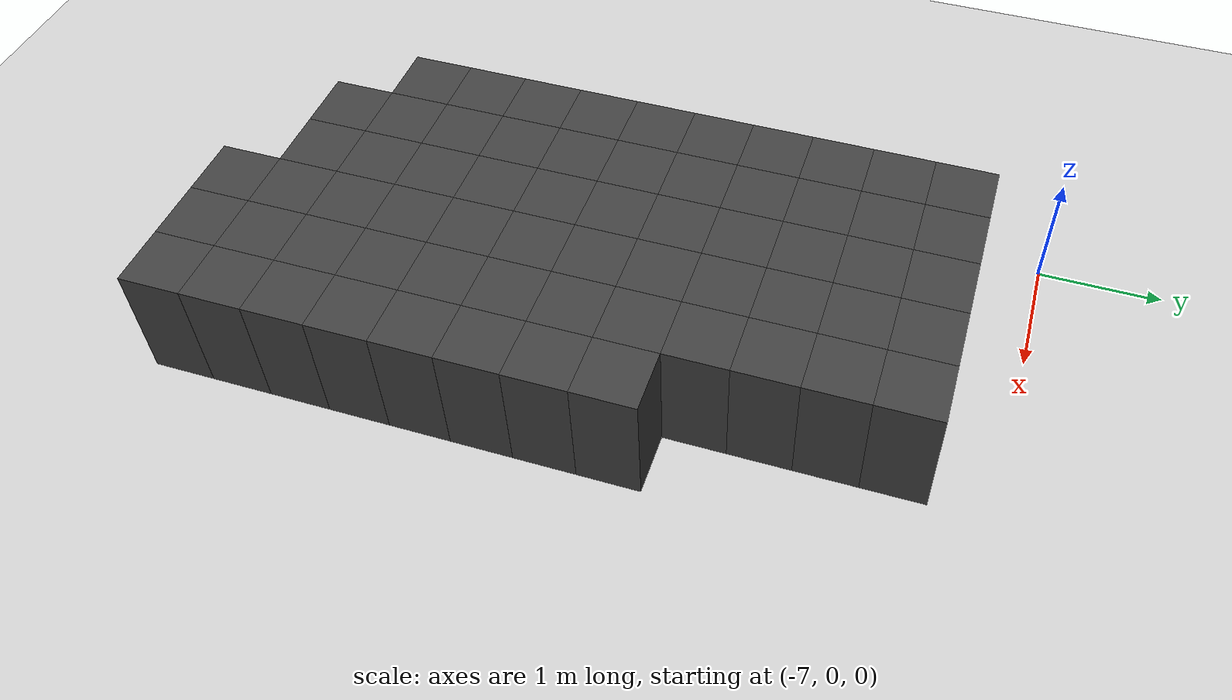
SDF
<sdf version="1.7">
 <world name="map_11515">
  <model name="ground_plane">
   <static>true</static>
   <link name="link">
    <collision name="collision">
     <geometry><plane><normal>0 0 1</normal><size>200 200</size></plane></geometry>
    </collision>
    <visual name="visual">
     <geometry><plane><normal>0 0 1</normal><size>200 200</size></plane></geometry>
     <material><ambient>0.8 0.8 0.8 1</ambient><diffuse>0.8 0.8 0.8 1</diffuse></material>
    </visual>
   </link>
  </model>
  <model name="maze_environment">
   <static>true</static>
   <link name="wall_1091">
    <pose>-6.750 -0.750 0.500 0 0 0</pose>
    <collision name="col"><geometry><box><size>0.5 0.5 1.0</size></box></geometry></collision>
    <visual name="vis">
     <geometry><box><size>0.5 0.5 1.0</size></box></geometry>
     <material><ambient>0.15 0.15 0.15 1</ambient><diffuse>0.25 0.25 0.25 1</diffuse></material>
    </visual>
   </link>
   <link name="wall_1092">
    <pose>-6.250 -0.750 0.500 0 0 0</pose>
    <collision name="col"><geometry><box><size>0.5 0.5 1.0</size></box></geometry></collision>
    <visual name="vis">
     <geometry><box><size>0.5 0.5 1.0</size></box></geometry>
     <material><ambient>0.15 0.15 0.15 1</ambient><diffuse>0.25 0.25 0.25 1</diffuse></material>
    </visual>
   </link>
   <link name="wall_1093">
    <pose>-5.750 -0.750 0.500 0 0 0</pose>
    <collision name="col"><geometry><box><size>0.5 0.5 1.0</size></box></geometry></collision>
    <visual name="vis">
     <geometry><box><size>0.5 0.5 1.0</size></box></geometry>
     <material><ambient>0.15 0.15 0.15 1</ambient><diffuse>0.25 0.25 0.25 1</diffuse></material>
    </visual>
   </link>
   <link name="wall_1094">
    <pose>-5.250 -0.750 0.500 0 0 0</pose>
    <collision name="col"><geometry><box><size>0.5 0.5 1.0</size></box></geometry></collision>
    <visual name="vis">
     <geometry><box><size>0.5 0.5 1.0</size></box></geometry>
     <material><ambient>0.15 0.15 0.15 1</ambient><diffuse>0.25 0.25 0.25 1</diffuse></material>
    </visual>
   </link>
   <link name="wall_1095">
    <pose>-4.750 -0.750 0.500 0 0 0</pose>
    <collision name="col"><geometry><box><size>0.5 0.5 1.0</size></box></geometry></collision>
    <visual name="vis">
     <geometry><box><size>0.5 0.5 1.0</size></box></geometry>
     <material><ambient>0.15 0.15 0.15 1</ambient><diffuse>0.25 0.25 0.25 1</diffuse></material>
    </visual>
   </link>
   <link name="wall_1140">
    <pose>-6.750 -1.250 0.500 0 0 0</pose>
    <collision name="col"><geometry><box><size>0.5 0.5 1.0</size></box></geometry></collision>
    <visual name="vis">
     <geometry><box><size>0.5 0.5 1.0</size></box></geometry>
     <material><ambient>0.15 0.15 0.15 1</ambient><diffuse>0.25 0.25 0.25 1</diffuse></material>
    </visual>
   </link>
   <link name="wall_1141">
    <pose>-6.250 -1.250 0.500 0 0 0</pose>
    <collision name="col"><geometry><box><size>0.5 0.5 1.0</size></box></geometry></collision>
    <visual name="vis">
     <geometry><box><size>0.5 0.5 1.0</size></box></geometry>
     <material><ambient>0.15 0.15 0.15 1</ambient><diffuse>0.25 0.25 0.25 1</diffuse></material>
    </visual>
   </link>
   <link name="wall_1142">
    <pose>-5.750 -1.250 0.500 0 0 0</pose>
    <collision name="col"><geometry><box><size>0.5 0.5 1.0</size></box></geometry></collision>
    <visual name="vis">
     <geometry><box><size>0.5 0.5 1.0</size></box></geometry>
     <material><ambient>0.15 0.15 0.15 1</ambient><diffuse>0.25 0.25 0.25 1</diffuse></material>
    </visual>
   </link>
   <link name="wall_1143">
    <pose>-5.250 -1.250 0.500 0 0 0</pose>
    <collision name="col"><geometry><box><size>0.5 0.5 1.0</size></box></geometry></collision>
    <visual name="vis">
     <geometry><box><size>0.5 0.5 1.0</size></box></geometry>
     <material><ambient>0.15 0.15 0.15 1</ambient><diffuse>0.25 0.25 0.25 1</diffuse></material>
    </visual>
   </link>
   <link name="wall_1144">
    <pose>-4.750 -1.250 0.500 0 0 0</pose>
    <collision name="col"><geometry><box><size>0.5 0.5 1.0</size></box></geometry></collision>
    <visual name="vis">
     <geometry><box><size>0.5 0.5 1.0</size></box></geometry>
     <material><ambient>0.15 0.15 0.15 1</ambient><diffuse>0.25 0.25 0.25 1</diffuse></material>
    </visual>
   </link>
   <link name="wall_1189">
    <pose>-6.750 -1.750 0.500 0 0 0</pose>
    <collision name="col"><geometry><box><size>0.5 0.5 1.0</size></box></geometry></collision>
    <visual name="vis">
     <geometry><box><size>0.5 0.5 1.0</size></box></geometry>
     <material><ambient>0.15 0.15 0.15 1</ambient><diffuse>0.25 0.25 0.25 1</diffuse></material>
    </visual>
   </link>
   <link name="wall_1190">
    <pose>-6.250 -1.750 0.500 0 0 0</pose>
    <collision name="col"><geometry><box><size>0.5 0.5 1.0</size></box></geometry></collision>
    <visual name="vis">
     <geometry><box><size>0.5 0.5 1.0</size></box></geometry>
     <material><ambient>0.15 0.15 0.15 1</ambient><diffuse>0.25 0.25 0.25 1</diffuse></material>
    </visual>
   </link>
   <link name="wall_1191">
    <pose>-5.750 -1.750 0.500 0 0 0</pose>
    <collision name="col"><geometry><box><size>0.5 0.5 1.0</size></box></geometry></collision>
    <visual name="vis">
     <geometry><box><size>0.5 0.5 1.0</size></box></geometry>
     <material><ambient>0.15 0.15 0.15 1</ambient><diffuse>0.25 0.25 0.25 1</diffuse></material>
    </visual>
   </link>
   <link name="wall_1192">
    <pose>-5.250 -1.750 0.500 0 0 0</pose>
    <collision name="col"><geometry><box><size>0.5 0.5 1.0</size></box></geometry></collision>
    <visual name="vis">
     <geometry><box><size>0.5 0.5 1.0</size></box></geometry>
     <material><ambient>0.15 0.15 0.15 1</ambient><diffuse>0.25 0.25 0.25 1</diffuse></material>
    </visual>
   </link>
   <link name="wall_1193">
    <pose>-4.750 -1.750 0.500 0 0 0</pose>
    <collision name="col"><geometry><box><size>0.5 0.5 1.0</size></box></geometry></collision>
    <visual name="vis">
     <geometry><box><size>0.5 0.5 1.0</size></box></geometry>
     <material><ambient>0.15 0.15 0.15 1</ambient><diffuse>0.25 0.25 0.25 1</diffuse></material>
    </visual>
   </link>
   <link name="wall_1238">
    <pose>-6.750 -2.250 0.500 0 0 0</pose>
    <collision name="col"><geometry><box><size>0.5 0.5 1.0</size></box></geometry></collision>
    <visual name="vis">
     <geometry><box><size>0.5 0.5 1.0</size></box></geometry>
     <material><ambient>0.15 0.15 0.15 1</ambient><diffuse>0.25 0.25 0.25 1</diffuse></material>
    </visual>
   </link>
   <link name="wall_1239">
    <pose>-6.250 -2.250 0.500 0 0 0</pose>
    <collision name="col"><geometry><box><size>0.5 0.5 1.0</size></box></geometry></collision>
    <visual name="vis">
     <geometry><box><size>0.5 0.5 1.0</size></box></geometry>
     <material><ambient>0.15 0.15 0.15 1</ambient><diffuse>0.25 0.25 0.25 1</diffuse></material>
    </visual>
   </link>
   <link name="wall_1240">
    <pose>-5.750 -2.250 0.500 0 0 0</pose>
    <collision name="col"><geometry><box><size>0.5 0.5 1.0</size></box></geometry></collision>
    <visual name="vis">
     <geometry><box><size>0.5 0.5 1.0</size></box></geometry>
     <material><ambient>0.15 0.15 0.15 1</ambient><diffuse>0.25 0.25 0.25 1</diffuse></material>
    </visual>
   </link>
   <link name="wall_1241">
    <pose>-5.250 -2.250 0.500 0 0 0</pose>
    <collision name="col"><geometry><box><size>0.5 0.5 1.0</size></box></geometry></collision>
    <visual name="vis">
     <geometry><box><size>0.5 0.5 1.0</size></box></geometry>
     <material><ambient>0.15 0.15 0.15 1</ambient><diffuse>0.25 0.25 0.25 1</diffuse></material>
    </visual>
   </link>
   <link name="wall_1242">
    <pose>-4.750 -2.250 0.500 0 0 0</pose>
    <collision name="col"><geometry><box><size>0.5 0.5 1.0</size></box></geometry></collision>
    <visual name="vis">
     <geometry><box><size>0.5 0.5 1.0</size></box></geometry>
     <material><ambient>0.15 0.15 0.15 1</ambient><diffuse>0.25 0.25 0.25 1</diffuse></material>
    </visual>
   </link>
   <link name="wall_1284">
    <pose>-6.750 -2.750 0.500 0 0 0</pose>
    <collision name="col"><geometry><box><size>0.5 0.5 1.0</size></box></geometry></collision>
    <visual name="vis">
     <geometry><box><size>0.5 0.5 1.0</size></box></geometry>
     <material><ambient>0.15 0.15 0.15 1</ambient><diffuse>0.25 0.25 0.25 1</diffuse></material>
    </visual>
   </link>
   <link name="wall_1285">
    <pose>-6.250 -2.750 0.500 0 0 0</pose>
    <collision name="col"><geometry><box><size>0.5 0.5 1.0</size></box></geometry></collision>
    <visual name="vis">
     <geometry><box><size>0.5 0.5 1.0</size></box></geometry>
     <material><ambient>0.15 0.15 0.15 1</ambient><diffuse>0.25 0.25 0.25 1</diffuse></material>
    </visual>
   </link>
   <link name="wall_1286">
    <pose>-5.750 -2.750 0.500 0 0 0</pose>
    <collision name="col"><geometry><box><size>0.5 0.5 1.0</size></box></geometry></collision>
    <visual name="vis">
     <geometry><box><size>0.5 0.5 1.0</size></box></geometry>
     <material><ambient>0.15 0.15 0.15 1</ambient><diffuse>0.25 0.25 0.25 1</diffuse></material>
    </visual>
   </link>
   <link name="wall_1287">
    <pose>-5.250 -2.750 0.500 0 0 0</pose>
    <collision name="col"><geometry><box><size>0.5 0.5 1.0</size></box></geometry></collision>
    <visual name="vis">
     <geometry><box><size>0.5 0.5 1.0</size></box></geometry>
     <material><ambient>0.15 0.15 0.15 1</ambient><diffuse>0.25 0.25 0.25 1</diffuse></material>
    </visual>
   </link>
   <link name="wall_1288">
    <pose>-4.750 -2.750 0.500 0 0 0</pose>
    <collision name="col"><geometry><box><size>0.5 0.5 1.0</size></box></geometry></collision>
    <visual name="vis">
     <geometry><box><size>0.5 0.5 1.0</size></box></geometry>
     <material><ambient>0.15 0.15 0.15 1</ambient><diffuse>0.25 0.25 0.25 1</diffuse></material>
    </visual>
   </link>
   <link name="wall_1289">
    <pose>-4.250 -2.750 0.500 0 0 0</pose>
    <collision name="col"><geometry><box><size>0.5 0.5 1.0</size></box></geometry></collision>
    <visual name="vis">
     <geometry><box><size>0.5 0.5 1.0</size></box></geometry>
     <material><ambient>0.15 0.15 0.15 1</ambient><diffuse>0.25 0.25 0.25 1</diffuse></material>
    </visual>
   </link>
   <link name="wall_1330">
    <pose>-6.750 -3.250 0.500 0 0 0</pose>
    <collision name="col"><geometry><box><size>0.5 0.5 1.0</size></box></geometry></collision>
    <visual name="vis">
     <geometry><box><size>0.5 0.5 1.0</size></box></geometry>
     <material><ambient>0.15 0.15 0.15 1</ambient><diffuse>0.25 0.25 0.25 1</diffuse></material>
    </visual>
   </link>
   <link name="wall_1331">
    <pose>-6.250 -3.250 0.500 0 0 0</pose>
    <collision name="col"><geometry><box><size>0.5 0.5 1.0</size></box></geometry></collision>
    <visual name="vis">
     <geometry><box><size>0.5 0.5 1.0</size></box></geometry>
     <material><ambient>0.15 0.15 0.15 1</ambient><diffuse>0.25 0.25 0.25 1</diffuse></material>
    </visual>
   </link>
   <link name="wall_1332">
    <pose>-5.750 -3.250 0.500 0 0 0</pose>
    <collision name="col"><geometry><box><size>0.5 0.5 1.0</size></box></geometry></collision>
    <visual name="vis">
     <geometry><box><size>0.5 0.5 1.0</size></box></geometry>
     <material><ambient>0.15 0.15 0.15 1</ambient><diffuse>0.25 0.25 0.25 1</diffuse></material>
    </visual>
   </link>
   <link name="wall_1333">
    <pose>-5.250 -3.250 0.500 0 0 0</pose>
    <collision name="col"><geometry><box><size>0.5 0.5 1.0</size></box></geometry></collision>
    <visual name="vis">
     <geometry><box><size>0.5 0.5 1.0</size></box></geometry>
     <material><ambient>0.15 0.15 0.15 1</ambient><diffuse>0.25 0.25 0.25 1</diffuse></material>
    </visual>
   </link>
   <link name="wall_1334">
    <pose>-4.750 -3.250 0.500 0 0 0</pose>
    <collision name="col"><geometry><box><size>0.5 0.5 1.0</size></box></geometry></collision>
    <visual name="vis">
     <geometry><box><size>0.5 0.5 1.0</size></box></geometry>
     <material><ambient>0.15 0.15 0.15 1</ambient><diffuse>0.25 0.25 0.25 1</diffuse></material>
    </visual>
   </link>
   <link name="wall_1335">
    <pose>-4.250 -3.250 0.500 0 0 0</pose>
    <collision name="col"><geometry><box><size>0.5 0.5 1.0</size></box></geometry></collision>
    <visual name="vis">
     <geometry><box><size>0.5 0.5 1.0</size></box></geometry>
     <material><ambient>0.15 0.15 0.15 1</ambient><diffuse>0.25 0.25 0.25 1</diffuse></material>
    </visual>
   </link>
   <link name="wall_1376">
    <pose>-6.750 -3.750 0.500 0 0 0</pose>
    <collision name="col"><geometry><box><size>0.5 0.5 1.0</size></box></geometry></collision>
    <visual name="vis">
     <geometry><box><size>0.5 0.5 1.0</size></box></geometry>
     <material><ambient>0.15 0.15 0.15 1</ambient><diffuse>0.25 0.25 0.25 1</diffuse></material>
    </visual>
   </link>
   <link name="wall_1377">
    <pose>-6.250 -3.750 0.500 0 0 0</pose>
    <collision name="col"><geometry><box><size>0.5 0.5 1.0</size></box></geometry></collision>
    <visual name="vis">
     <geometry><box><size>0.5 0.5 1.0</size></box></geometry>
     <material><ambient>0.15 0.15 0.15 1</ambient><diffuse>0.25 0.25 0.25 1</diffuse></material>
    </visual>
   </link>
   <link name="wall_1378">
    <pose>-5.750 -3.750 0.500 0 0 0</pose>
    <collision name="col"><geometry><box><size>0.5 0.5 1.0</size></box></geometry></collision>
    <visual name="vis">
     <geometry><box><size>0.5 0.5 1.0</size></box></geometry>
     <material><ambient>0.15 0.15 0.15 1</ambient><diffuse>0.25 0.25 0.25 1</diffuse></material>
    </visual>
   </link>
   <link name="wall_1379">
    <pose>-5.250 -3.750 0.500 0 0 0</pose>
    <collision name="col"><geometry><box><size>0.5 0.5 1.0</size></box></geometry></collision>
    <visual name="vis">
     <geometry><box><size>0.5 0.5 1.0</size></box></geometry>
     <material><ambient>0.15 0.15 0.15 1</ambient><diffuse>0.25 0.25 0.25 1</diffuse></material>
    </visual>
   </link>
   <link name="wall_1380">
    <pose>-4.750 -3.750 0.500 0 0 0</pose>
    <collision name="col"><geometry><box><size>0.5 0.5 1.0</size></box></geometry></collision>
    <visual name="vis">
     <geometry><box><size>0.5 0.5 1.0</size></box></geometry>
     <material><ambient>0.15 0.15 0.15 1</ambient><diffuse>0.25 0.25 0.25 1</diffuse></material>
    </visual>
   </link>
   <link name="wall_1381">
    <pose>-4.250 -3.750 0.500 0 0 0</pose>
    <collision name="col"><geometry><box><size>0.5 0.5 1.0</size></box></geometry></collision>
    <visual name="vis">
     <geometry><box><size>0.5 0.5 1.0</size></box></geometry>
     <material><ambient>0.15 0.15 0.15 1</ambient><diffuse>0.25 0.25 0.25 1</diffuse></material>
    </visual>
   </link>
   <link name="wall_1422">
    <pose>-6.750 -4.250 0.500 0 0 0</pose>
    <collision name="col"><geometry><box><size>0.5 0.5 1.0</size></box></geometry></collision>
    <visual name="vis">
     <geometry><box><size>0.5 0.5 1.0</size></box></geometry>
     <material><ambient>0.15 0.15 0.15 1</ambient><diffuse>0.25 0.25 0.25 1</diffuse></material>
    </visual>
   </link>
   <link name="wall_1423">
    <pose>-6.250 -4.250 0.500 0 0 0</pose>
    <collision name="col"><geometry><box><size>0.5 0.5 1.0</size></box></geometry></collision>
    <visual name="vis">
     <geometry><box><size>0.5 0.5 1.0</size></box></geometry>
     <material><ambient>0.15 0.15 0.15 1</ambient><diffuse>0.25 0.25 0.25 1</diffuse></material>
    </visual>
   </link>
   <link name="wall_1424">
    <pose>-5.750 -4.250 0.500 0 0 0</pose>
    <collision name="col"><geometry><box><size>0.5 0.5 1.0</size></box></geometry></collision>
    <visual name="vis">
     <geometry><box><size>0.5 0.5 1.0</size></box></geometry>
     <material><ambient>0.15 0.15 0.15 1</ambient><diffuse>0.25 0.25 0.25 1</diffuse></material>
    </visual>
   </link>
   <link name="wall_1425">
    <pose>-5.250 -4.250 0.500 0 0 0</pose>
    <collision name="col"><geometry><box><size>0.5 0.5 1.0</size></box></geometry></collision>
    <visual name="vis">
     <geometry><box><size>0.5 0.5 1.0</size></box></geometry>
     <material><ambient>0.15 0.15 0.15 1</ambient><diffuse>0.25 0.25 0.25 1</diffuse></material>
    </visual>
   </link>
   <link name="wall_1426">
    <pose>-4.750 -4.250 0.500 0 0 0</pose>
    <collision name="col"><geometry><box><size>0.5 0.5 1.0</size></box></geometry></collision>
    <visual name="vis">
     <geometry><box><size>0.5 0.5 1.0</size></box></geometry>
     <material><ambient>0.15 0.15 0.15 1</ambient><diffuse>0.25 0.25 0.25 1</diffuse></material>
    </visual>
   </link>
   <link name="wall_1427">
    <pose>-4.250 -4.250 0.500 0 0 0</pose>
    <collision name="col"><geometry><box><size>0.5 0.5 1.0</size></box></geometry></collision>
    <visual name="vis">
     <geometry><box><size>0.5 0.5 1.0</size></box></geometry>
     <material><ambient>0.15 0.15 0.15 1</ambient><diffuse>0.25 0.25 0.25 1</diffuse></material>
    </visual>
   </link>
   <link name="wall_1468">
    <pose>-6.750 -4.750 0.500 0 0 0</pose>
    <collision name="col"><geometry><box><size>0.5 0.5 1.0</size></box></geometry></collision>
    <visual name="vis">
     <geometry><box><size>0.5 0.5 1.0</size></box></geometry>
     <material><ambient>0.15 0.15 0.15 1</ambient><diffuse>0.25 0.25 0.25 1</diffuse></material>
    </visual>
   </link>
   <link name="wall_1469">
    <pose>-6.250 -4.750 0.500 0 0 0</pose>
    <collision name="col"><geometry><box><size>0.5 0.5 1.0</size></box></geometry></collision>
    <visual name="vis">
     <geometry><box><size>0.5 0.5 1.0</size></box></geometry>
     <material><ambient>0.15 0.15 0.15 1</ambient><diffuse>0.25 0.25 0.25 1</diffuse></material>
    </visual>
   </link>
   <link name="wall_1470">
    <pose>-5.750 -4.750 0.500 0 0 0</pose>
    <collision name="col"><geometry><box><size>0.5 0.5 1.0</size></box></geometry></collision>
    <visual name="vis">
     <geometry><box><size>0.5 0.5 1.0</size></box></geometry>
     <material><ambient>0.15 0.15 0.15 1</ambient><diffuse>0.25 0.25 0.25 1</diffuse></material>
    </visual>
   </link>
   <link name="wall_1471">
    <pose>-5.250 -4.750 0.500 0 0 0</pose>
    <collision name="col"><geometry><box><size>0.5 0.5 1.0</size></box></geometry></collision>
    <visual name="vis">
     <geometry><box><size>0.5 0.5 1.0</size></box></geometry>
     <material><ambient>0.15 0.15 0.15 1</ambient><diffuse>0.25 0.25 0.25 1</diffuse></material>
    </visual>
   </link>
   <link name="wall_1472">
    <pose>-4.750 -4.750 0.500 0 0 0</pose>
    <collision name="col"><geometry><box><size>0.5 0.5 1.0</size></box></geometry></collision>
    <visual name="vis">
     <geometry><box><size>0.5 0.5 1.0</size></box></geometry>
     <material><ambient>0.15 0.15 0.15 1</ambient><diffuse>0.25 0.25 0.25 1</diffuse></material>
    </visual>
   </link>
   <link name="wall_1473">
    <pose>-4.250 -4.750 0.500 0 0 0</pose>
    <collision name="col"><geometry><box><size>0.5 0.5 1.0</size></box></geometry></collision>
    <visual name="vis">
     <geometry><box><size>0.5 0.5 1.0</size></box></geometry>
     <material><ambient>0.15 0.15 0.15 1</ambient><diffuse>0.25 0.25 0.25 1</diffuse></material>
    </visual>
   </link>
   <link name="wall_1514">
    <pose>-6.750 -5.250 0.500 0 0 0</pose>
    <collision name="col"><geometry><box><size>0.5 0.5 1.0</size></box></geometry></collision>
    <visual name="vis">
     <geometry><box><size>0.5 0.5 1.0</size></box></geometry>
     <material><ambient>0.15 0.15 0.15 1</ambient><diffuse>0.25 0.25 0.25 1</diffuse></material>
    </visual>
   </link>
   <link name="wall_1515">
    <pose>-6.250 -5.250 0.500 0 0 0</pose>
    <collision name="col"><geometry><box><size>0.5 0.5 1.0</size></box></geometry></collision>
    <visual name="vis">
     <geometry><box><size>0.5 0.5 1.0</size></box></geometry>
     <material><ambient>0.15 0.15 0.15 1</ambient><diffuse>0.25 0.25 0.25 1</diffuse></material>
    </visual>
   </link>
   <link name="wall_1516">
    <pose>-5.750 -5.250 0.500 0 0 0</pose>
    <collision name="col"><geometry><box><size>0.5 0.5 1.0</size></box></geometry></collision>
    <visual name="vis">
     <geometry><box><size>0.5 0.5 1.0</size></box></geometry>
     <material><ambient>0.15 0.15 0.15 1</ambient><diffuse>0.25 0.25 0.25 1</diffuse></material>
    </visual>
   </link>
   <link name="wall_1517">
    <pose>-5.250 -5.250 0.500 0 0 0</pose>
    <collision name="col"><geometry><box><size>0.5 0.5 1.0</size></box></geometry></collision>
    <visual name="vis">
     <geometry><box><size>0.5 0.5 1.0</size></box></geometry>
     <material><ambient>0.15 0.15 0.15 1</ambient><diffuse>0.25 0.25 0.25 1</diffuse></material>
    </visual>
   </link>
   <link name="wall_1518">
    <pose>-4.750 -5.250 0.500 0 0 0</pose>
    <collision name="col"><geometry><box><size>0.5 0.5 1.0</size></box></geometry></collision>
    <visual name="vis">
     <geometry><box><size>0.5 0.5 1.0</size></box></geometry>
     <material><ambient>0.15 0.15 0.15 1</ambient><diffuse>0.25 0.25 0.25 1</diffuse></material>
    </visual>
   </link>
   <link name="wall_1519">
    <pose>-4.250 -5.250 0.500 0 0 0</pose>
    <collision name="col"><geometry><box><size>0.5 0.5 1.0</size></box></geometry></collision>
    <visual name="vis">
     <geometry><box><size>0.5 0.5 1.0</size></box></geometry>
     <material><ambient>0.15 0.15 0.15 1</ambient><diffuse>0.25 0.25 0.25 1</diffuse></material>
    </visual>
   </link>
   <link name="wall_1564">
    <pose>-6.250 -5.750 0.500 0 0 0</pose>
    <collision name="col"><geometry><box><size>0.5 0.5 1.0</size></box></geometry></collision>
    <visual name="vis">
     <geometry><box><size>0.5 0.5 1.0</size></box></geometry>
     <material><ambient>0.15 0.15 0.15 1</ambient><diffuse>0.25 0.25 0.25 1</diffuse></material>
    </visual>
   </link>
   <link name="wall_1565">
    <pose>-5.750 -5.750 0.500 0 0 0</pose>
    <collision name="col"><geometry><box><size>0.5 0.5 1.0</size></box></geometry></collision>
    <visual name="vis">
     <geometry><box><size>0.5 0.5 1.0</size></box></geometry>
     <material><ambient>0.15 0.15 0.15 1</ambient><diffuse>0.25 0.25 0.25 1</diffuse></material>
    </visual>
   </link>
   <link name="wall_1566">
    <pose>-5.250 -5.750 0.500 0 0 0</pose>
    <collision name="col"><geometry><box><size>0.5 0.5 1.0</size></box></geometry></collision>
    <visual name="vis">
     <geometry><box><size>0.5 0.5 1.0</size></box></geometry>
     <material><ambient>0.15 0.15 0.15 1</ambient><diffuse>0.25 0.25 0.25 1</diffuse></material>
    </visual>
   </link>
   <link name="wall_1567">
    <pose>-4.750 -5.750 0.500 0 0 0</pose>
    <collision name="col"><geometry><box><size>0.5 0.5 1.0</size></box></geometry></collision>
    <visual name="vis">
     <geometry><box><size>0.5 0.5 1.0</size></box></geometry>
     <material><ambient>0.15 0.15 0.15 1</ambient><diffuse>0.25 0.25 0.25 1</diffuse></material>
    </visual>
   </link>
   <link name="wall_1568">
    <pose>-4.250 -5.750 0.500 0 0 0</pose>
    <collision name="col"><geometry><box><size>0.5 0.5 1.0</size></box></geometry></collision>
    <visual name="vis">
     <geometry><box><size>0.5 0.5 1.0</size></box></geometry>
     <material><ambient>0.15 0.15 0.15 1</ambient><diffuse>0.25 0.25 0.25 1</diffuse></material>
    </visual>
   </link>
   <link name="wall_1615">
    <pose>-5.250 -6.250 0.500 0 0 0</pose>
    <collision name="col"><geometry><box><size>0.5 0.5 1.0</size></box></geometry></collision>
    <visual name="vis">
     <geometry><box><size>0.5 0.5 1.0</size></box></geometry>
     <material><ambient>0.15 0.15 0.15 1</ambient><diffuse>0.25 0.25 0.25 1</diffuse></material>
    </visual>
   </link>
   <link name="wall_1616">
    <pose>-4.750 -6.250 0.500 0 0 0</pose>
    <collision name="col"><geometry><box><size>0.5 0.5 1.0</size></box></geometry></collision>
    <visual name="vis">
     <geometry><box><size>0.5 0.5 1.0</size></box></geometry>
     <material><ambient>0.15 0.15 0.15 1</ambient><diffuse>0.25 0.25 0.25 1</diffuse></material>
    </visual>
   </link>
   <link name="wall_1617">
    <pose>-4.250 -6.250 0.500 0 0 0</pose>
    <collision name="col"><geometry><box><size>0.5 0.5 1.0</size></box></geometry></collision>
    <visual name="vis">
     <geometry><box><size>0.5 0.5 1.0</size></box></geometry>
     <material><ambient>0.15 0.15 0.15 1</ambient><diffuse>0.25 0.25 0.25 1</diffuse></material>
    </visual>
   </link>
  </model>
 </world>
</sdf>
